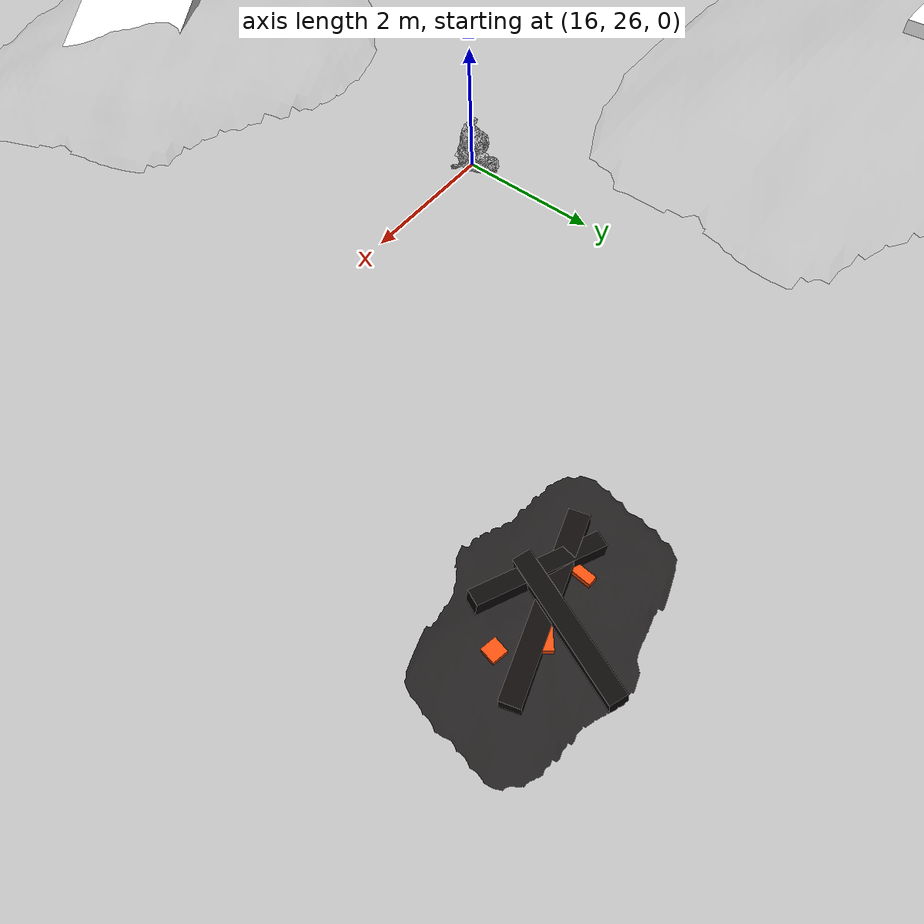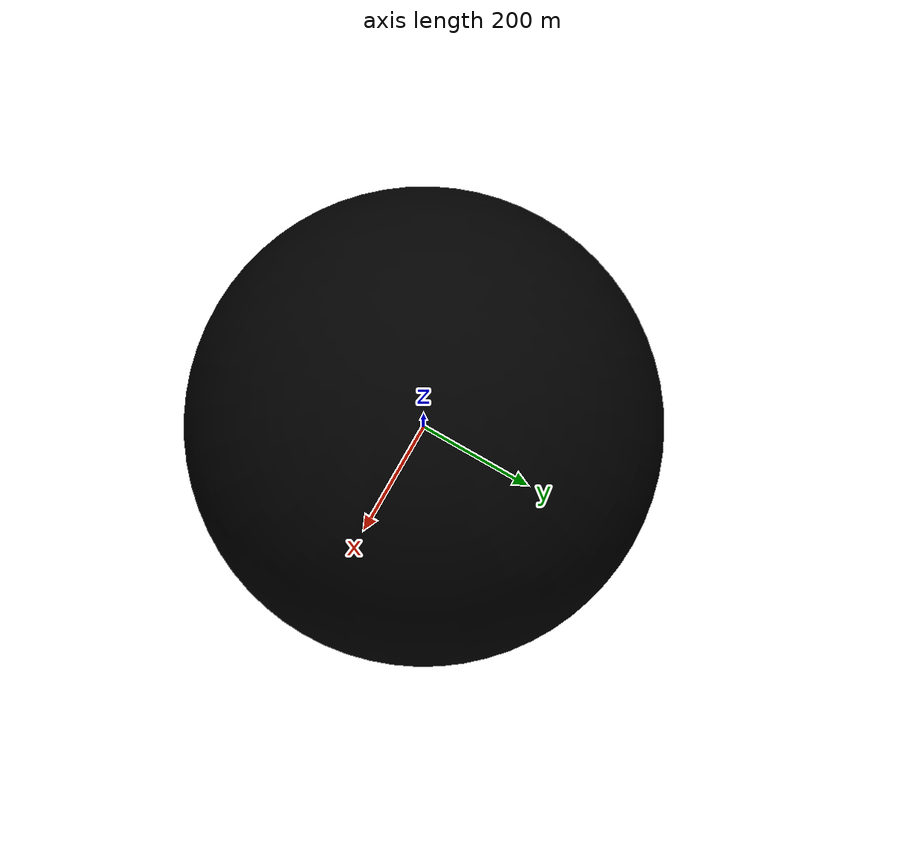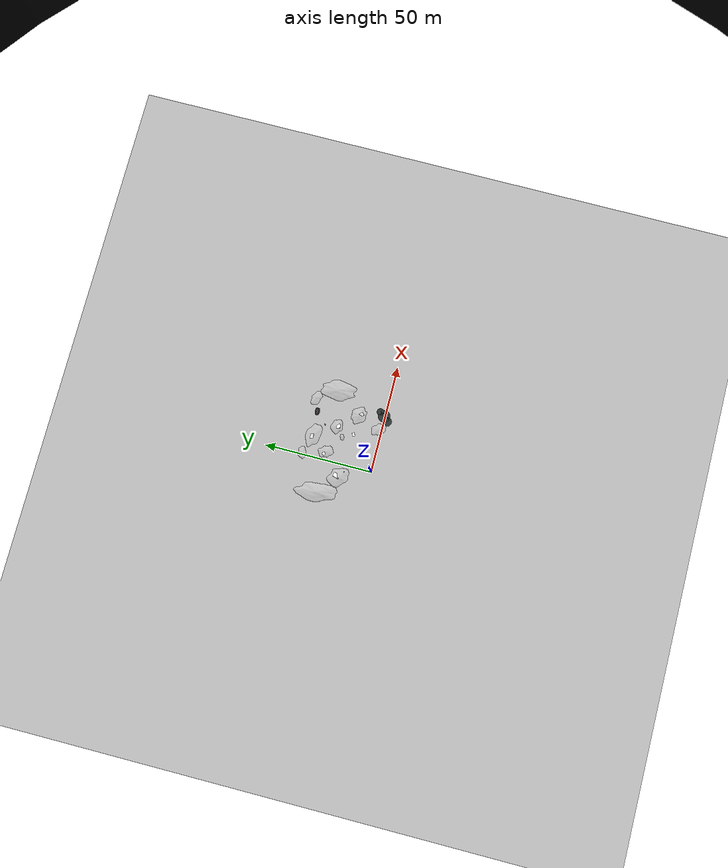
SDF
<sdf version="1.9">
 <world name="disaster">
  <physics name="1ms" type="ignore">
   <max_step_size>0.001</max_step_size>
   <real_time_factor>1.0</real_time_factor>
  </physics>
  <plugin filename="gz-sim-physics-system" name="gz::sim::systems::Physics"/>
  <plugin filename="gz-sim-sensors-system" name="gz::sim::systems::Sensors">
   <render_engine>ogre2</render_engine>
  </plugin>
  <plugin filename="gz-sim-user-commands-system" name="gz::sim::systems::UserCommands"/>
  <plugin filename="gz-sim-scene-broadcaster-system" name="gz::sim::systems::SceneBroadcaster"/>
  <plugin filename="gz-sim-air-pressure-system" name="gz::sim::systems::AirPressure"/>
  <plugin filename="gz-sim-air-speed-system" name="gz::sim::systems::AirSpeed"/>
  <plugin filename="gz-sim-altimeter-system" name="gz::sim::systems::Altimeter"/>
  <plugin filename="gz-sim-imu-system" name="gz::sim::systems::Imu"/>
  <plugin filename="gz-sim-magnetometer-system" name="gz::sim::systems::Magnetometer"/>
  <plugin filename="gz-sim-navsat-system" name="gz::sim::systems::NavSat"/>
  <plugin filename="gz-sim-particle-emitter-system" name="gz::sim::systems::ParticleEmitter"/>
  <scene><ambient>0.15 0.15 0.15</ambient><background>0.62 0.58 0.52</background></scene>
  <light type="directional" name="fill">
   <cast_shadows>false</cast_shadows>
   <pose>0 0 10 0 0 0</pose>
   <diffuse>0.4 0.4 0.4 1</diffuse>
   <specular>0 0 0 1</specular>
   <direction>0 0 -1</direction>
  </light>
  <atmosphere type="adiabatic">
   <temperature>288</temperature>
   <temperature_gradient>-0.0003</temperature_gradient>
  </atmosphere>
  <light type="directional" name="sun">
   <pose>0 0 10 0 0 0</pose>
   <diffuse>0.7 0.7 0.7 1</diffuse>
   <specular>0.8 0.8 0.8 1</specular>
   <attenuation>
    <range>1000</range>
    <constant>0.9</constant>
    <linear>0.01</linear>
    <quadratic>0.001</quadratic>
   </attenuation>
   <direction>-0.5 0.1 -0.9</direction>
  </light>
  <include><name>sky_day</name><uri>model://sky_dome</uri></include>
  <include><name>sky_night</name><uri>model://sky_dome_night</uri><pose>0 0 -100000 0 0 0</pose></include>
  <spherical_coordinates>
   <latitude_deg>-35.3632621</latitude_deg>
   <longitude_deg>149.1652374</longitude_deg>
   <elevation>10.0</elevation>
   <heading_deg>0</heading_deg>
   <surface_model>EARTH_WGS84</surface_model>
  </spherical_coordinates>
  <include><uri>model://disaster_ground</uri></include>
  <include><name>smoke_industrial</name><uri>model://smoke_plume</uri><pose>46 20 6 0 0 0</pose></include>
  <include><name>smoke_industrial_2</name><uri>model://smoke_plume</uri><pose>54 27 3 0 0 0</pose></include>
  <include><name>smoke_fire_station</name><uri>model://smoke_plume</uri><pose>2 56 4 0 0 0</pose></include>
  <model name="rubble">
   <static>true</static>
   <link name="link">
    <visual name="m1">
     <pose>16.5 20.5 0 0 0 0.4</pose>
     <geometry>
      <mesh><uri>model://disaster_ground/meshes/rubble_mound_0.dae</uri><scale>3.5 2.5 1.6</scale></mesh>
     </geometry>
    </visual>
    <collision name="m1_c">
     <pose>16.5 20.5 0 0 0 0.4</pose>
     <geometry>
      <mesh><uri>model://disaster_ground/meshes/rubble_mound_0.dae</uri><scale>3.5 2.5 1.6</scale></mesh>
     </geometry>
    </collision>
    <visual name="m2">
     <pose>4.0 22.5 0 0 0 -0.3</pose>
     <geometry>
      <mesh><uri>model://disaster_ground/meshes/rubble_mound_1.dae</uri><scale>3.0 3.0 1.4</scale></mesh>
     </geometry>
    </visual>
    <collision name="m2_c">
     <pose>4.0 22.5 0 0 0 -0.3</pose>
     <geometry>
      <mesh><uri>model://disaster_ground/meshes/rubble_mound_1.dae</uri><scale>3.0 3.0 1.4</scale></mesh>
     </geometry>
    </collision>
    <visual name="m3">
     <pose>-6.0 14.0 0 0 0 0.1</pose>
     <geometry>
      <mesh><uri>model://disaster_ground/meshes/rubble_mound_2.dae</uri><scale>4.0 5.0 2.0</scale></mesh>
     </geometry>
    </visual>
    <collision name="m3_c">
     <pose>-6.0 14.0 0 0 0 0.1</pose>
     <geometry>
      <mesh><uri>model://disaster_ground/meshes/rubble_mound_2.dae</uri><scale>4.0 5.0 2.0</scale></mesh>
     </geometry>
    </collision>
    <visual name="m4">
     <pose>24.0 12.0 0 0 0 0.8</pose>
     <geometry>
      <mesh><uri>model://disaster_ground/meshes/rubble_mound_3.dae</uri><scale>3.0 4.5 1.8</scale></mesh>
     </geometry>
    </visual>
    <collision name="m4_c">
     <pose>24.0 12.0 0 0 0 0.8</pose>
     <geometry>
      <mesh><uri>model://disaster_ground/meshes/rubble_mound_3.dae</uri><scale>3.0 4.5 1.8</scale></mesh>
     </geometry>
    </collision>
    <visual name="m5">
     <pose>10.0 30.0 0 0 0 0.0</pose>
     <geometry>
      <mesh><uri>model://disaster_ground/meshes/rubble_mound_0.dae</uri><scale>6.0 3.0 1.5</scale></mesh>
     </geometry>
    </visual>
    <collision name="m5_c">
     <pose>10.0 30.0 0 0 0 0.0</pose>
     <geometry>
      <mesh><uri>model://disaster_ground/meshes/rubble_mound_0.dae</uri><scale>6.0 3.0 1.5</scale></mesh>
     </geometry>
    </collision>
    <visual name="m6">
     <pose>20.0 1.5 0 0 0 -0.5</pose>
     <geometry>
      <mesh><uri>model://disaster_ground/meshes/rubble_mound_1.dae</uri><scale>3.5 2.5 1.2</scale></mesh>
     </geometry>
    </visual>
    <collision name="m6_c">
     <pose>20.0 1.5 0 0 0 -0.5</pose>
     <geometry>
      <mesh><uri>model://disaster_ground/meshes/rubble_mound_1.dae</uri><scale>3.5 2.5 1.2</scale></mesh>
     </geometry>
    </collision>
    <visual name="m7">
     <pose>-15.0 22.0 0 0 0 0.0</pose>
     <geometry>
      <mesh><uri>model://disaster_ground/meshes/rubble_mound_2.dae</uri><scale>4.0 10.0 2.5</scale></mesh>
     </geometry>
    </visual>
    <collision name="m7_c">
     <pose>-15.0 22.0 0 0 0 0.0</pose>
     <geometry>
      <mesh><uri>model://disaster_ground/meshes/rubble_mound_2.dae</uri><scale>4.0 10.0 2.5</scale></mesh>
     </geometry>
    </collision>
    <visual name="m8">
     <pose>33.0 24.0 0 0 0 0.0</pose>
     <geometry>
      <mesh><uri>model://disaster_ground/meshes/rubble_mound_3.dae</uri><scale>4.0 9.0 2.5</scale></mesh>
     </geometry>
    </visual>
    <collision name="m8_c">
     <pose>33.0 24.0 0 0 0 0.0</pose>
     <geometry>
      <mesh><uri>model://disaster_ground/meshes/rubble_mound_3.dae</uri><scale>4.0 9.0 2.5</scale></mesh>
     </geometry>
    </collision>
    <visual name="m9">
     <pose>12.3 16.9 0 0 0 0.9</pose>
     <geometry>
      <mesh><uri>model://disaster_ground/meshes/rubble_mound_1.dae</uri><scale>1.3 1.0 1.0</scale></mesh>
     </geometry>
    </visual>
    <collision name="m9_c">
     <pose>12.3 16.9 0 0 0 0.9</pose>
     <geometry>
      <mesh><uri>model://disaster_ground/meshes/rubble_mound_1.dae</uri><scale>1.3 1.0 1.0</scale></mesh>
     </geometry>
    </collision>
    <visual name="m10">
     <pose>1.0 33.0 0 0 0 0.5</pose>
     <geometry>
      <mesh><uri>model://disaster_ground/meshes/rubble_mound_2.dae</uri><scale>2.5 2.0 1.2</scale></mesh>
     </geometry>
    </visual>
    <collision name="m10_c">
     <pose>1.0 33.0 0 0 0 0.5</pose>
     <geometry>
      <mesh><uri>model://disaster_ground/meshes/rubble_mound_2.dae</uri><scale>2.5 2.0 1.2</scale></mesh>
     </geometry>
    </collision>
    <visual name="m11">
     <pose>27.0 33.0 0 0 0 1.0</pose>
     <geometry>
      <mesh><uri>model://disaster_ground/meshes/rubble_mound_0.dae</uri><scale>2.5 3.0 1.4</scale></mesh>
     </geometry>
    </visual>
    <collision name="m11_c">
     <pose>27.0 33.0 0 0 0 1.0</pose>
     <geometry>
      <mesh><uri>model://disaster_ground/meshes/rubble_mound_0.dae</uri><scale>2.5 3.0 1.4</scale></mesh>
     </geometry>
    </collision>
    <visual name="s1">
     <pose>17.0 20.0 0.55 0.0 0.35 0.4</pose>
     <geometry><box><size>2.6 1.8 0.2</size></box></geometry>
     <material>
      <diffuse>1 1 1 1</diffuse>
      <pbr>
       <metal>
        <albedo_map>model://disaster_ground/materials/textures/concrete.jpg</albedo_map>
        <roughness>0.95</roughness>
        <metalness>0</metalness>
       </metal>
      </pbr>
     </material>
    </visual>
    <collision name="s1_c">
     <pose>17.0 20.0 0.55 0.0 0.35 0.4</pose>
     <geometry><box><size>2.6 1.8 0.2</size></box></geometry>
    </collision>
    <visual name="s2">
     <pose>-5.5 15.0 0.7 0.3 -0.2 1.3</pose>
     <geometry><box><size>3.0 2.0 0.22</size></box></geometry>
     <material>
      <diffuse>1 1 1 1</diffuse>
      <pbr>
       <metal>
        <albedo_map>model://disaster_ground/materials/textures/concrete.jpg</albedo_map>
        <roughness>0.95</roughness>
        <metalness>0</metalness>
       </metal>
      </pbr>
     </material>
    </visual>
    <collision name="s2_c">
     <pose>-5.5 15.0 0.7 0.3 -0.2 1.3</pose>
     <geometry><box><size>3.0 2.0 0.22</size></box></geometry>
    </collision>
    <visual name="s3">
     <pose>24.5 11.0 0.6 -0.25 0.3 2.2</pose>
     <geometry><box><size>2.2 1.6 0.2</size></box></geometry>
     <material>
      <diffuse>1 1 1 1</diffuse>
      <pbr>
       <metal>
        <albedo_map>model://disaster_ground/materials/textures/concrete.jpg</albedo_map>
        <roughness>0.95</roughness>
        <metalness>0</metalness>
       </metal>
      </pbr>
     </material>
    </visual>
    <collision name="s3_c">
     <pose>24.5 11.0 0.6 -0.25 0.3 2.2</pose>
     <geometry><box><size>2.2 1.6 0.2</size></box></geometry>
    </collision>
    <visual name="s4">
     <pose>3.0 23.0 0.45 0.2 0.25 -0.6</pose>
     <geometry><box><size>2.0 1.4 0.18</size></box></geometry>
     <material>
      <diffuse>1 1 1 1</diffuse>
      <pbr>
       <metal>
        <albedo_map>model://disaster_ground/materials/textures/concrete.jpg</albedo_map>
        <roughness>0.95</roughness>
        <metalness>0</metalness>
       </metal>
      </pbr>
     </material>
    </visual>
    <collision name="s4_c">
     <pose>3.0 23.0 0.45 0.2 0.25 -0.6</pose>
     <geometry><box><size>2.0 1.4 0.18</size></box></geometry>
    </collision>
    <visual name="s5">
     <pose>9.0 30.5 0.5 0.0 -0.3 0.1</pose>
     <geometry><box><size>2.8 1.5 0.2</size></box></geometry>
     <material>
      <diffuse>1 1 1 1</diffuse>
      <pbr>
       <metal>
        <albedo_map>model://disaster_ground/materials/textures/concrete.jpg</albedo_map>
        <roughness>0.95</roughness>
        <metalness>0</metalness>
       </metal>
      </pbr>
     </material>
    </visual>
    <collision name="s5_c">
     <pose>9.0 30.5 0.5 0.0 -0.3 0.1</pose>
     <geometry><box><size>2.8 1.5 0.2</size></box></geometry>
    </collision>
    <visual name="s6">
     <pose>14.8 12.2 0.12 0.0 0.0 0.5</pose>
     <geometry><box><size>1.6 1.1 0.16</size></box></geometry>
     <material>
      <diffuse>1 1 1 1</diffuse>
      <pbr>
       <metal>
        <albedo_map>model://disaster_ground/materials/textures/concrete.jpg</albedo_map>
        <roughness>0.95</roughness>
        <metalness>0</metalness>
       </metal>
      </pbr>
     </material>
    </visual>
    <collision name="s6_c">
     <pose>14.8 12.2 0.12 0.0 0.0 0.5</pose>
     <geometry><box><size>1.6 1.1 0.16</size></box></geometry>
    </collision>
   </link>
  </model>
  <model name="smouldering_debris">
   <static>true</static>
   <pose>21 31 0 0 0 0.3</pose>
   <link name="link">
    <visual name="ash">
     <geometry>
      <mesh><uri>model://disaster_ground/meshes/rubble_mound_3.dae</uri><scale>1.5 1.3 0.6</scale></mesh>
     </geometry>
     <material>
      <ambient>0.1 0.1 0.1 1</ambient>
      <diffuse>0.13 0.12 0.12 1</diffuse>
      <specular>0 0 0 1</specular>
     </material>
     <plugin filename="gz-sim-thermal-system" name="gz::sim::systems::Thermal">
      <temperature>305.0</temperature>
     </plugin>
    </visual>
    <visual name="beam_1">
     <pose>0 0 0.28 0 0.08 0</pose>
     <geometry><box><size>2.2 0.25 0.25</size></box></geometry>
     <material>
      <ambient>0.03 0.025 0.02 1</ambient>
      <diffuse>0.05 0.04 0.035 1</diffuse>
      <specular>0 0 0 1</specular>
     </material>
     <plugin filename="gz-sim-thermal-system" name="gz::sim::systems::Thermal">
      <temperature>330.0</temperature>
     </plugin>
    </visual>
    <visual name="beam_2">
     <pose>0.2 0.3 0.45 0.1 0 0.9</pose>
     <geometry><box><size>1.8 0.22 0.22</size></box></geometry>
     <material>
      <ambient>0.03 0.025 0.02 1</ambient>
      <diffuse>0.05 0.04 0.035 1</diffuse>
      <specular>0 0 0 1</specular>
     </material>
     <plugin filename="gz-sim-thermal-system" name="gz::sim::systems::Thermal">
      <temperature>330.0</temperature>
     </plugin>
    </visual>
    <visual name="beam_3">
     <pose>-0.3 -0.2 0.4 0 -0.12 -0.7</pose>
     <geometry><box><size>1.6 0.2 0.2</size></box></geometry>
     <material>
      <ambient>0.03 0.025 0.02 1</ambient>
      <diffuse>0.05 0.04 0.035 1</diffuse>
      <specular>0 0 0 1</specular>
     </material>
     <plugin filename="gz-sim-thermal-system" name="gz::sim::systems::Thermal">
      <temperature>330.0</temperature>
     </plugin>
    </visual>
    <visual name="ember_1">
     <pose>0.3 0.1 0.3 0 0 0.4</pose>
     <geometry><box><size>0.35 0.15 0.08</size></box></geometry>
     <material>
      <ambient>1 0.3 0.05 1</ambient>
      <diffuse>1 0.3 0.05 1</diffuse>
      <emissive>1 0.35 0.05 1</emissive>
     </material>
     <plugin filename="gz-sim-thermal-system" name="gz::sim::systems::Thermal">
      <temperature>360.0</temperature>
     </plugin>
    </visual>
    <visual name="ember_2">
     <pose>-0.5 0.25 0.25 0 0 1.2</pose>
     <geometry><box><size>0.25 0.12 0.08</size></box></geometry>
     <material>
      <ambient>1 0.3 0.05 1</ambient>
      <diffuse>1 0.3 0.05 1</diffuse>
      <emissive>1 0.35 0.05 1</emissive>
     </material>
     <plugin filename="gz-sim-thermal-system" name="gz::sim::systems::Thermal">
      <temperature>360.0</temperature>
     </plugin>
    </visual>
    <visual name="ember_3">
     <pose>0.6 -0.35 0.2 0 0 -0.5</pose>
     <geometry><box><size>0.2 0.2 0.06</size></box></geometry>
     <material>
      <ambient>1 0.3 0.05 1</ambient>
      <diffuse>1 0.3 0.05 1</diffuse>
      <emissive>1 0.35 0.05 1</emissive>
     </material>
     <plugin filename="gz-sim-thermal-system" name="gz::sim::systems::Thermal">
      <temperature>360.0</temperature>
     </plugin>
    </visual>
   </link>
  </model>
  <model name="flood_water">
   <static>true</static>
   <link name="link">
    <visual name="pool_main">
     <pose>26.5 0.5 0.03 0 0 0</pose>
     <geometry><cylinder><radius>2.8</radius><length>0.02</length></cylinder></geometry>
     <material>
      <ambient>0.10 0.13 0.13 1</ambient>
      <diffuse>0.16 0.20 0.19 1</diffuse>
      <specular>0.7 0.7 0.7 1</specular>
      <pbr><metal><roughness>0.08</roughness><metalness>0.0</metalness></metal></pbr>
     </material>
     <cast_shadows>false</cast_shadows>
     <plugin filename="gz-sim-thermal-system" name="gz::sim::systems::Thermal">
      <temperature>279.0</temperature>
     </plugin>
    </visual>
    <visual name="pool_sw">
     <pose>24.3 -1.6 0.03 0 0 0</pose>
     <geometry><cylinder><radius>2.0</radius><length>0.02</length></cylinder></geometry>
     <material>
      <ambient>0.10 0.13 0.13 1</ambient>
      <diffuse>0.16 0.20 0.19 1</diffuse>
      <specular>0.7 0.7 0.7 1</specular>
      <pbr><metal><roughness>0.08</roughness><metalness>0.0</metalness></metal></pbr>
     </material>
     <cast_shadows>false</cast_shadows>
     <plugin filename="gz-sim-thermal-system" name="gz::sim::systems::Thermal">
      <temperature>279.0</temperature>
     </plugin>
    </visual>
    <visual name="pool_ne">
     <pose>28.0 2.6 0.03 0 0 0</pose>
     <geometry><cylinder><radius>1.7</radius><length>0.02</length></cylinder></geometry>
     <material>
      <ambient>0.10 0.13 0.13 1</ambient>
      <diffuse>0.16 0.20 0.19 1</diffuse>
      <specular>0.7 0.7 0.7 1</specular>
      <pbr><metal><roughness>0.08</roughness><metalness>0.0</metalness></metal></pbr>
     </material>
     <cast_shadows>false</cast_shadows>
     <plugin filename="gz-sim-thermal-system" name="gz::sim::systems::Thermal">
      <temperature>279.0</temperature>
     </plugin>
    </visual>
   </link>
  </model>
  <model name="casualty_2_heat">
   <static>true</static>
   <pose>22 21.5 0.27 0 0 2.3</pose>
   <link name="body">
    <visual name="head">
     <pose>-0.55 0 0 0 0 0</pose>
     <geometry><sphere><radius>0.123</radius></sphere></geometry>
     <transparency>1.0</transparency>
     <cast_shadows>false</cast_shadows>
     <plugin filename="gz-sim-thermal-system" name="gz::sim::systems::Thermal">
      <temperature>309.0</temperature>
     </plugin>
    </visual>
    <visual name="neck">
     <pose>-0.42 0 0 0 1.5708 0</pose>
     <geometry><cylinder><radius>0.056</radius><length>0.08</length></cylinder></geometry>
     <transparency>1.0</transparency>
     <cast_shadows>false</cast_shadows>
     <plugin filename="gz-sim-thermal-system" name="gz::sim::systems::Thermal">
      <temperature>309.0</temperature>
     </plugin>
    </visual>
    <visual name="torso">
     <pose>-0.15 0 0 0 0 0</pose>
     <geometry><box><size>0.515 0.381 0.2</size></box></geometry>
     <transparency>1.0</transparency>
     <cast_shadows>false</cast_shadows>
     <plugin filename="gz-sim-thermal-system" name="gz::sim::systems::Thermal">
      <temperature>305.0</temperature>
     </plugin>
    </visual>
    <visual name="pelvis">
     <pose>0.12 0 0 0 0 0</pose>
     <geometry><box><size>0.2 0.336 0.18</size></box></geometry>
     <transparency>1.0</transparency>
     <cast_shadows>false</cast_shadows>
     <plugin filename="gz-sim-thermal-system" name="gz::sim::systems::Thermal">
      <temperature>305.0</temperature>
     </plugin>
    </visual>
    <visual name="leg_l">
     <pose>0.6 0.13 0 0 1.5708 0.12</pose>
     <geometry><cylinder><radius>0.078</radius><length>0.9</length></cylinder></geometry>
     <transparency>1.0</transparency>
     <cast_shadows>false</cast_shadows>
     <plugin filename="gz-sim-thermal-system" name="gz::sim::systems::Thermal">
      <temperature>305.0</temperature>
     </plugin>
    </visual>
    <visual name="leg_r">
     <pose>0.6 -0.13 0 0 1.5708 -0.12</pose>
     <geometry><cylinder><radius>0.078</radius><length>0.9</length></cylinder></geometry>
     <transparency>1.0</transparency>
     <cast_shadows>false</cast_shadows>
     <plugin filename="gz-sim-thermal-system" name="gz::sim::systems::Thermal">
      <temperature>305.0</temperature>
     </plugin>
    </visual>
    <visual name="arm_l">
     <pose>-0.02 0.24 0 0 1.5708 0</pose>
     <geometry><cylinder><radius>0.050</radius><length>0.66</length></cylinder></geometry>
     <transparency>1.0</transparency>
     <cast_shadows>false</cast_shadows>
     <plugin filename="gz-sim-thermal-system" name="gz::sim::systems::Thermal">
      <temperature>305.0</temperature>
     </plugin>
    </visual>
    <visual name="arm_r">
     <pose>-0.02 -0.24 0 0 1.5708 0</pose>
     <geometry><cylinder><radius>0.050</radius><length>0.66</length></cylinder></geometry>
     <transparency>1.0</transparency>
     <cast_shadows>false</cast_shadows>
     <plugin filename="gz-sim-thermal-system" name="gz::sim::systems::Thermal">
      <temperature>305.0</temperature>
     </plugin>
    </visual>
    <visual name="hand_l">
     <pose>0.34 0.25 0 0 0 0</pose>
     <geometry><sphere><radius>0.055</radius></sphere></geometry>
     <transparency>1.0</transparency>
     <cast_shadows>false</cast_shadows>
     <plugin filename="gz-sim-thermal-system" name="gz::sim::systems::Thermal">
      <temperature>309.0</temperature>
     </plugin>
    </visual>
    <visual name="hand_r">
     <pose>0.34 -0.25 0 0 0 0</pose>
     <geometry><sphere><radius>0.055</radius></sphere></geometry>
     <transparency>1.0</transparency>
     <cast_shadows>false</cast_shadows>
     <plugin filename="gz-sim-thermal-system" name="gz::sim::systems::Thermal">
      <temperature>309.0</temperature>
     </plugin>
    </visual>
   </link>
  </model>
  <include><name>dog_open</name><uri>model://dog</uri><pose>-3 12 0 0 0 1.0</pose></include>
  <include><name>dog_rubble</name><uri>model://dog</uri><pose>16 26 0 0 0 -2.2</pose></include>
  <model name="test_person_heat">
   <static>true</static>
   <pose>10 15 0.27 0 0 0.7</pose>
   <link name="body">
    <visual name="head">
     <pose>-0.55 0 0 0 0 0</pose>
     <geometry><sphere><radius>0.123</radius></sphere></geometry>
     <transparency>1.0</transparency>
     <cast_shadows>false</cast_shadows>
     <plugin filename="gz-sim-thermal-system" name="gz::sim::systems::Thermal">
      <temperature>309.0</temperature>
     </plugin>
    </visual>
    <visual name="neck">
     <pose>-0.42 0 0 0 1.5708 0</pose>
     <geometry><cylinder><radius>0.056</radius><length>0.08</length></cylinder></geometry>
     <transparency>1.0</transparency>
     <cast_shadows>false</cast_shadows>
     <plugin filename="gz-sim-thermal-system" name="gz::sim::systems::Thermal">
      <temperature>309.0</temperature>
     </plugin>
    </visual>
    <visual name="torso">
     <pose>-0.15 0 0 0 0 0</pose>
     <geometry><box><size>0.515 0.381 0.2</size></box></geometry>
     <transparency>1.0</transparency>
     <cast_shadows>false</cast_shadows>
     <plugin filename="gz-sim-thermal-system" name="gz::sim::systems::Thermal">
      <temperature>305.0</temperature>
     </plugin>
    </visual>
    <visual name="pelvis">
     <pose>0.12 0 0 0 0 0</pose>
     <geometry><box><size>0.2 0.336 0.18</size></box></geometry>
     <transparency>1.0</transparency>
     <cast_shadows>false</cast_shadows>
     <plugin filename="gz-sim-thermal-system" name="gz::sim::systems::Thermal">
      <temperature>305.0</temperature>
     </plugin>
    </visual>
    <visual name="leg_l">
     <pose>0.6 0.13 0 0 1.5708 0.12</pose>
     <geometry><cylinder><radius>0.078</radius><length>0.9</length></cylinder></geometry>
     <transparency>1.0</transparency>
     <cast_shadows>false</cast_shadows>
     <plugin filename="gz-sim-thermal-system" name="gz::sim::systems::Thermal">
      <temperature>305.0</temperature>
     </plugin>
    </visual>
    <visual name="leg_r">
     <pose>0.6 -0.13 0 0 1.5708 -0.12</pose>
     <geometry><cylinder><radius>0.078</radius><length>0.9</length></cylinder></geometry>
     <transparency>1.0</transparency>
     <cast_shadows>false</cast_shadows>
     <plugin filename="gz-sim-thermal-system" name="gz::sim::systems::Thermal">
      <temperature>305.0</temperature>
     </plugin>
    </visual>
    <visual name="arm_l">
     <pose>-0.02 0.24 0 0 1.5708 0</pose>
     <geometry><cylinder><radius>0.050</radius><length>0.66</length></cylinder></geometry>
     <transparency>1.0</transparency>
     <cast_shadows>false</cast_shadows>
     <plugin filename="gz-sim-thermal-system" name="gz::sim::systems::Thermal">
      <temperature>305.0</temperature>
     </plugin>
    </visual>
    <visual name="arm_r">
     <pose>-0.02 -0.24 0 0 1.5708 0</pose>
     <geometry><cylinder><radius>0.050</radius><length>0.66</length></cylinder></geometry>
     <transparency>1.0</transparency>
     <cast_shadows>false</cast_shadows>
     <plugin filename="gz-sim-thermal-system" name="gz::sim::systems::Thermal">
      <temperature>305.0</temperature>
     </plugin>
    </visual>
    <visual name="hand_l">
     <pose>0.34 0.25 0 0 0 0</pose>
     <geometry><sphere><radius>0.055</radius></sphere></geometry>
     <transparency>1.0</transparency>
     <cast_shadows>false</cast_shadows>
     <plugin filename="gz-sim-thermal-system" name="gz::sim::systems::Thermal">
      <temperature>309.0</temperature>
     </plugin>
    </visual>
    <visual name="hand_r">
     <pose>0.34 -0.25 0 0 0 0</pose>
     <geometry><sphere><radius>0.055</radius></sphere></geometry>
     <transparency>1.0</transparency>
     <cast_shadows>false</cast_shadows>
     <plugin filename="gz-sim-thermal-system" name="gz::sim::systems::Thermal">
      <temperature>309.0</temperature>
     </plugin>
    </visual>
   </link>
  </model>
  <model name="payload_box">
   <pose>0 -0.05 0.12 0 0 0</pose>
   <link name="body">
    <inertial>
     <mass>0.3</mass>
     <inertia><ixx>0.0003</ixx><ixy>0</ixy><ixz>0</ixz><iyy>0.0003</iyy><iyz>0</iyz><izz>0.0003</izz></inertia>
    </inertial>
    <visual name="visual">
     <geometry><box><size>0.08 0.08 0.06</size></box></geometry>
     <material>
      <ambient>0.9 0.55 0.05 1</ambient>
      <diffuse>0.9 0.55 0.05 1</diffuse>
      <specular>0.3 0.3 0.3 1</specular>
     </material>
    </visual>
    <collision name="collision"><geometry><box><size>0.08 0.08 0.06</size></box></geometry></collision>
   </link>
  </model>
 </world>
</sdf>

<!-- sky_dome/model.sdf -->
<sdf version="1.9">
  <model name="sky_dome">
    <static>true</static>
    <link name="link">
      <visual name="visual">
        <cast_shadows>false</cast_shadows>
        <geometry><mesh><uri>model://sky_dome/meshes/dome.dae</uri><scale>400 400 400</scale></mesh></geometry>
        <material>
          <ambient>0 0 0 1</ambient>
          <diffuse>0 0 0 1</diffuse>
          <specular>0 0 0 1</specular>
          <emissive>1 1 1 1</emissive>
          <pbr>
            <metal>
              <albedo_map>model://sky_dome/materials/textures/sky_day.jpg</albedo_map>
              <emissive_map>model://sky_dome/materials/textures/sky_day.jpg</emissive_map>
              <roughness>1</roughness>
              <metalness>0</metalness>
            </metal>
          </pbr>
        </material>
        <!-- Clear sky is cold to a thermal camera. -->
        <plugin filename="gz-sim-thermal-system" name="gz::sim::systems::Thermal">
          <temperature>240.0</temperature>
        </plugin>
      </visual>
    </link>
  </model>
</sdf>

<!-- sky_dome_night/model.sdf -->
<sdf version="1.9">
  <model name="sky_dome_night">
    <static>true</static>
    <link name="link">
      <visual name="visual">
        <cast_shadows>false</cast_shadows>
        <geometry><mesh><uri>model://sky_dome/meshes/dome.dae</uri><scale>400 400 400</scale></mesh></geometry>
        <material>
          <ambient>0 0 0 1</ambient>
          <diffuse>0 0 0 1</diffuse>
          <specular>0 0 0 1</specular>
          <emissive>1 1 1 1</emissive>
          <pbr>
            <metal>
              <albedo_map>model://sky_dome/materials/textures/sky_night.jpg</albedo_map>
              <emissive_map>model://sky_dome/materials/textures/sky_night.jpg</emissive_map>
              <roughness>1</roughness>
              <metalness>0</metalness>
            </metal>
          </pbr>
        </material>
        <!-- Clear sky is cold to a thermal camera. -->
        <plugin filename="gz-sim-thermal-system" name="gz::sim::systems::Thermal">
          <temperature>240.0</temperature>
        </plugin>
      </visual>
    </link>
  </model>
</sdf>

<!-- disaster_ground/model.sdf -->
<sdf version="1.9">
  <!-- 300x300 m flat ground with a generated, tileable dust/cracked-soil
       texture (repeats every 20 m). Flat on purpose: the mission bridge
       projects detections onto the z=0 ground plane. -->
  <model name="disaster_ground">
    <static>true</static>
    <link name="link">
      <collision name="collision">
        <geometry><plane><normal>0 0 1</normal><size>300 300</size></plane></geometry>
        <surface><friction><ode><mu>100</mu><mu2>50</mu2></ode></friction></surface>
      </collision>
      <visual name="visual">
        <cast_shadows>false</cast_shadows>
        <geometry><mesh><uri>model://disaster_ground/meshes/ground.dae</uri></mesh></geometry>
      </visual>
    </link>
  </model>
</sdf>

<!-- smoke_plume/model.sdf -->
<sdf version="1.9">
  <model name="smoke_plume">
    <static>true</static>
    <link name="link">
      <pose>0 0 0 0 -1.5708 0</pose>
      <particle_emitter name="emitter" type="box">
        <emitting>true</emitting>
        <size>0.5 3 3</size>
        <particle_size>2.5 2.5 2.5</particle_size>
        <lifetime>12</lifetime>
        <min_velocity>1.2</min_velocity>
        <max_velocity>2.2</max_velocity>
        <scale_rate>1.2</scale_rate>
        <rate>10</rate>
        <material>
          <diffuse>0.35 0.33 0.32</diffuse>
          <specular>0 0 0</specular>
          <pbr>
            <metal>
              <albedo_map>materials/textures/smoke.png</albedo_map>
            </metal>
          </pbr>
        </material>
      </particle_emitter>
    </link>
  </model>
</sdf>

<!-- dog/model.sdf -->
<!--
Mesh and texture: "Dog" by Google (Google Scanned Objects), CC BY 4.0.
See model.config.
-->
<sdf version="1.9">
  <model name="dog">
    <static>true</static>
    <link name="link">
      <visual name="visual">
        <geometry>
          <mesh>
            <uri>model://dog/meshes/model.obj</uri>
            <scale>3.5 3.5 3.5</scale>
          </mesh>
        </geometry>
        <!-- A dog's core is ~311.5 K (38.5 C), but through fur the surface
             reads ~302-307 K (29-34 C). heat_signature.png is the blurred
             grey of the texture, mapped onto that range. -->
        <plugin filename="gz-sim-thermal-system" name="gz::sim::systems::Thermal">
          <heat_signature>model://dog/materials/textures/heat_signature.png</heat_signature>
          <min_temp>302.0</min_temp>
          <max_temp>307.0</max_temp>
        </plugin>
      </visual>
    </link>
  </model>
</sdf>
